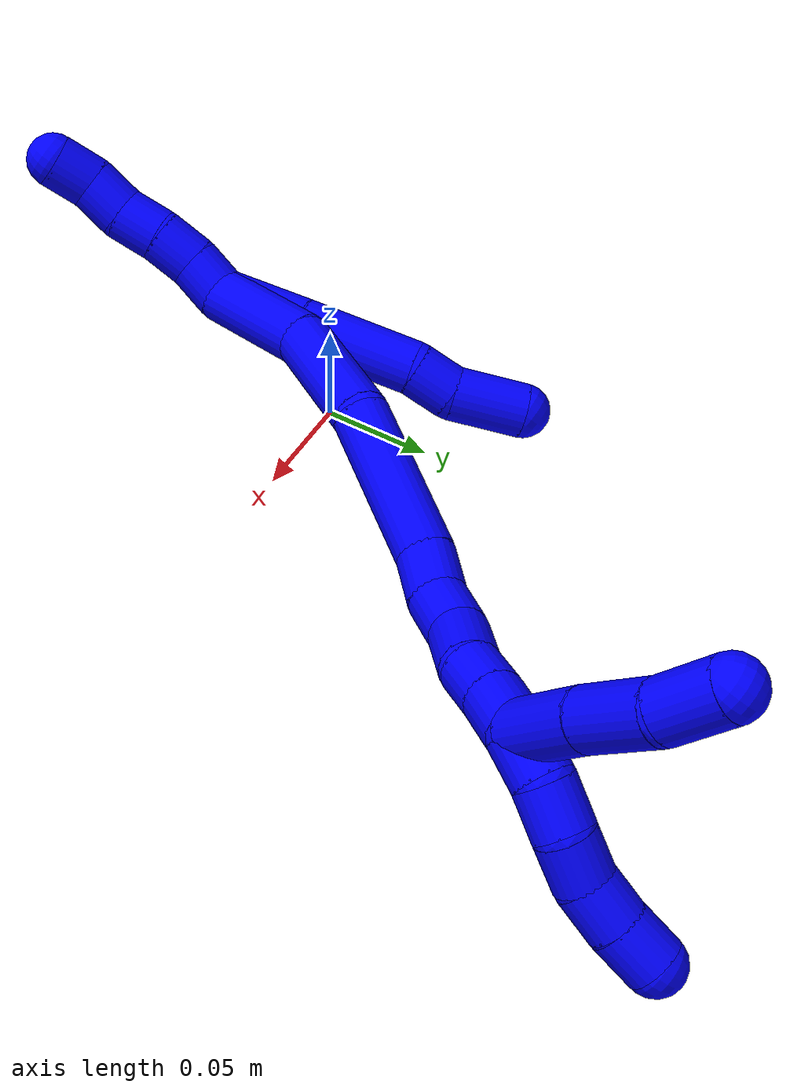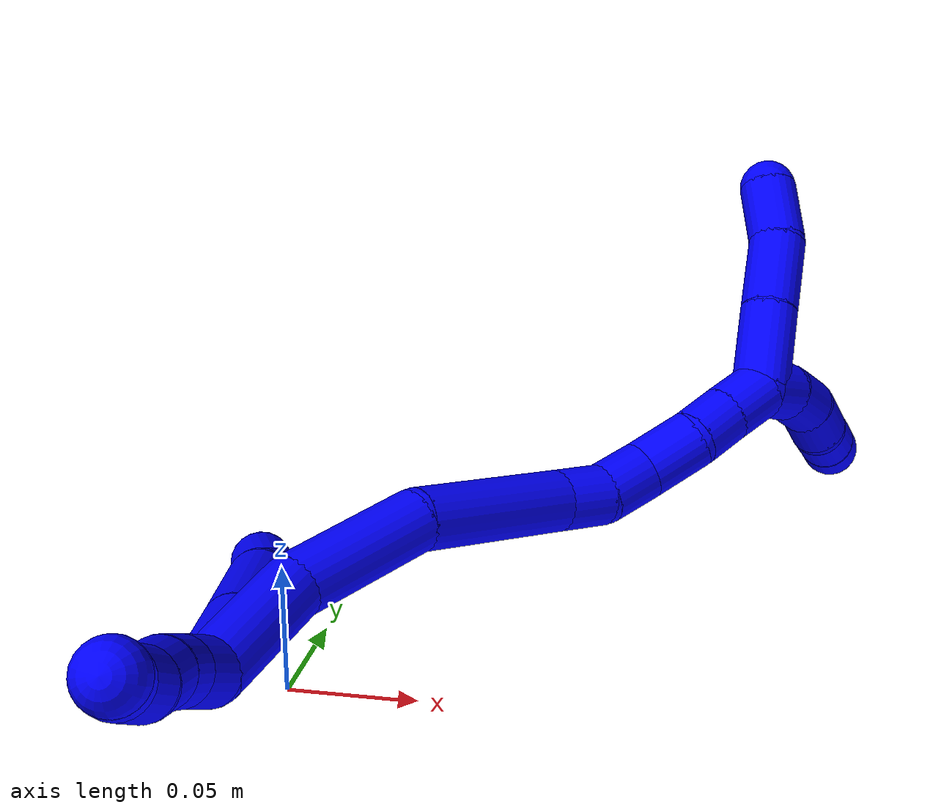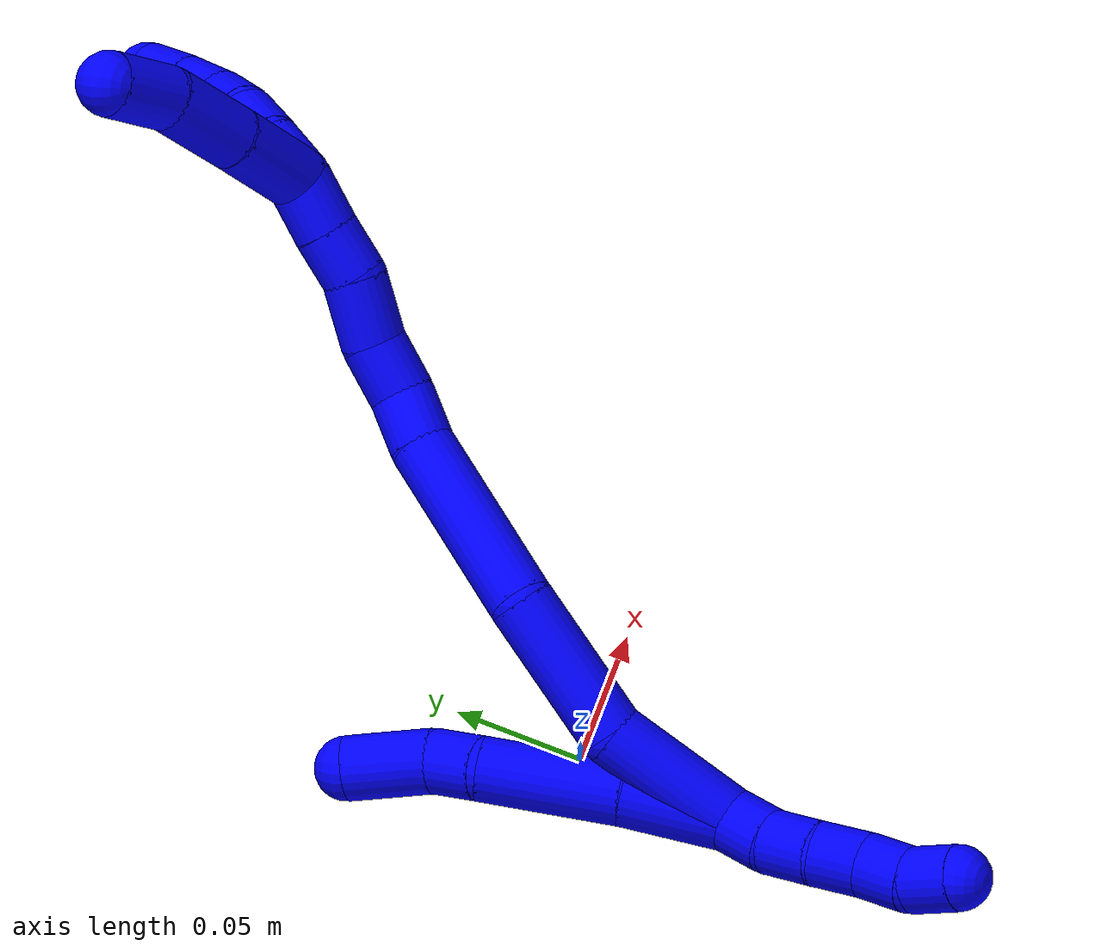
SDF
<sdf version="1.7">
 <world name="default">
  <model name="1">
   <static>0</static>
   <link name="1">
    <collision name="collision-cylinder-e_1_2_8">
     <pose>0.007049 0.00426 -0.018745 -2.91811 0.351485 -2.01451</pose>
     <geometry><cylinder><radius>0.0125</radius><length>0.04095</length></cylinder></geometry>
     <surface>
      <friction><ode><mu>1.16</mu><mu2>1.16</mu2><slip1>0</slip1><slip2>0</slip2></ode></friction>
      <contact><ode><kp>1e+06</kp><kd>1</kd><max_vel>0</max_vel><min_depth>0.001</min_depth></ode></contact>
     </surface>
    </collision>
    <visual name="visual-cylinder-e_1_2_8">
     <pose>0.007049 0.00426 -0.018745 -2.91811 0.351485 -2.01451</pose>
     <geometry><cylinder><radius>0.0125</radius><length>0.04095</length></cylinder></geometry>
     <material><ambient>0 0 1 1</ambient></material>
    </visual>
    <collision name="collision-cylinder-e_2_8_9">
     <pose>0.021313 0.014524 -0.063314 -2.91319 0.265669 -1.72291</pose>
     <geometry><cylinder><radius>0.0125</radius><length>0.054952</length></cylinder></geometry>
     <surface>
      <friction><ode><mu>1.16</mu><mu2>1.16</mu2><slip1>0</slip1><slip2>0</slip2></ode></friction>
      <contact><ode><kp>1e+06</kp><kd>1</kd><max_vel>0</max_vel><min_depth>0.001</min_depth></ode></contact>
     </surface>
    </collision>
    <visual name="visual-cylinder-e_2_8_9">
     <pose>0.021313 0.014524 -0.063314 -2.91319 0.265669 -1.72291</pose>
     <geometry><cylinder><radius>0.0125</radius><length>0.054952</length></cylinder></geometry>
     <material><ambient>0 0 1 1</ambient></material>
    </visual>
    <collision name="collision-cylinder-e_3_9_10">
     <pose>0.028909 0.021017 -0.099191 -3.09285 0.037995 -1.32409</pose>
     <geometry><cylinder><radius>0.0125</radius><length>0.020146</length></cylinder></geometry>
     <surface>
      <friction><ode><mu>1.16</mu><mu2>1.16</mu2><slip1>0</slip1><slip2>0</slip2></ode></friction>
      <contact><ode><kp>1e+06</kp><kd>1</kd><max_vel>0</max_vel><min_depth>0.001</min_depth></ode></contact>
     </surface>
    </collision>
    <visual name="visual-cylinder-e_3_9_10">
     <pose>0.028909 0.021017 -0.099191 -3.09285 0.037995 -1.32409</pose>
     <geometry><cylinder><radius>0.0125</radius><length>0.020146</length></cylinder></geometry>
     <material><ambient>0 0 1 1</ambient></material>
    </visual>
    <collision name="collision-cylinder-e_4_10_6">
     <pose>0.030337 0.027934 -0.124923 -2.75255 0.061588 -0.310198</pose>
     <geometry><cylinder><radius>0.0125</radius><length>0.033952</length></cylinder></geometry>
     <surface>
      <friction><ode><mu>1.16</mu><mu2>1.16</mu2><slip1>0</slip1><slip2>0</slip2></ode></friction>
      <contact><ode><kp>1e+06</kp><kd>1</kd><max_vel>0</max_vel><min_depth>0.001</min_depth></ode></contact>
     </surface>
    </collision>
    <visual name="visual-cylinder-e_4_10_6">
     <pose>0.030337 0.027934 -0.124923 -2.75255 0.061588 -0.310198</pose>
     <geometry><cylinder><radius>0.0125</radius><length>0.033952</length></cylinder></geometry>
     <material><ambient>0 0 1 1</ambient></material>
    </visual>
    <collision name="collision-cylinder-e_1_2_11">
     <pose>-0.001403 0.002413 0.009602 -0.246199 -0.140797 0.017449</pose>
     <geometry><cylinder><radius>0.0125</radius><length>0.02</length></cylinder></geometry>
     <surface>
      <friction><ode><mu>1.16</mu><mu2>1.16</mu2><slip1>0</slip1><slip2>0</slip2></ode></friction>
      <contact><ode><kp>1e+06</kp><kd>1</kd><max_vel>0</max_vel><min_depth>0.001</min_depth></ode></contact>
     </surface>
    </collision>
    <visual name="visual-cylinder-e_1_2_11">
     <pose>-0.001403 0.002413 0.009602 -0.246199 -0.140797 0.017449</pose>
     <geometry><cylinder><radius>0.0125</radius><length>0.02</length></cylinder></geometry>
     <material><ambient>0 0 1 1</ambient></material>
    </visual>
    <collision name="collision-cylinder-e_2_11_12">
     <pose>-0.003333 0.005203 0.029184 -0.037746 -0.052633 0.000994</pose>
     <geometry><cylinder><radius>0.0125</radius><length>0.02</length></cylinder></geometry>
     <surface>
      <friction><ode><mu>1.16</mu><mu2>1.16</mu2><slip1>0</slip1><slip2>0</slip2></ode></friction>
      <contact><ode><kp>1e+06</kp><kd>1</kd><max_vel>0</max_vel><min_depth>0.001</min_depth></ode></contact>
     </surface>
    </collision>
    <visual name="visual-cylinder-e_2_11_12">
     <pose>-0.003333 0.005203 0.029184 -0.037746 -0.052633 0.000994</pose>
     <geometry><cylinder><radius>0.0125</radius><length>0.02</length></cylinder></geometry>
     <material><ambient>0 0 1 1</ambient></material>
    </visual>
    <collision name="collision-cylinder-e_3_12_13">
     <pose>-0.005473 0.004907 0.049009 0.068231 -0.162141 -0.005546</pose>
     <geometry><cylinder><radius>0.0125</radius><length>0.02</length></cylinder></geometry>
     <surface>
      <friction><ode><mu>1.16</mu><mu2>1.16</mu2><slip1>0</slip1><slip2>0</slip2></ode></friction>
      <contact><ode><kp>1e+06</kp><kd>1</kd><max_vel>0</max_vel><min_depth>0.001</min_depth></ode></contact>
     </surface>
    </collision>
    <visual name="visual-cylinder-e_3_12_13">
     <pose>-0.005473 0.004907 0.049009 0.068231 -0.162141 -0.005546</pose>
     <geometry><cylinder><radius>0.0125</radius><length>0.02</length></cylinder></geometry>
     <material><ambient>0 0 1 1</ambient></material>
    </visual>
    <collision name="collision-cylinder-e_4_13_14">
     <pose>-0.007339 0.005626 0.068754 -0.139635 -0.025161 0.00176</pose>
     <geometry><cylinder><radius>0.0125</radius><length>0.02</length></cylinder></geometry>
     <surface>
      <friction><ode><mu>1.16</mu><mu2>1.16</mu2><slip1>0</slip1><slip2>0</slip2></ode></friction>
      <contact><ode><kp>1e+06</kp><kd>1</kd><max_vel>0</max_vel><min_depth>0.001</min_depth></ode></contact>
     </surface>
    </collision>
    <visual name="visual-cylinder-e_4_13_14">
     <pose>-0.007339 0.005626 0.068754 -0.139635 -0.025161 0.00176</pose>
     <geometry><cylinder><radius>0.0125</radius><length>0.02</length></cylinder></geometry>
     <material><ambient>0 0 1 1</ambient></material>
    </visual>
    <collision name="collision-cylinder-e_5_14_5">
     <pose>-0.005932 0.005738 0.088432 0.13005 0.166596 0.010873</pose>
     <geometry><cylinder><radius>0.0125</radius><length>0.02</length></cylinder></geometry>
     <surface>
      <friction><ode><mu>1.16</mu><mu2>1.16</mu2><slip1>0</slip1><slip2>0</slip2></ode></friction>
      <contact><ode><kp>1e+06</kp><kd>1</kd><max_vel>0</max_vel><min_depth>0.001</min_depth></ode></contact>
     </surface>
    </collision>
    <visual name="visual-cylinder-e_5_14_5">
     <pose>-0.005932 0.005738 0.088432 0.13005 0.166596 0.010873</pose>
     <geometry><cylinder><radius>0.0125</radius><length>0.02</length></cylinder></geometry>
     <material><ambient>0 0 1 1</ambient></material>
    </visual>
    <collision name="collision-cylinder-e_1_2_15">
     <pose>0.018278 -0.000413 -0.020298 3.12123 0.732992 3.08854</pose>
     <geometry><cylinder><radius>0.0125</radius><length>0.054636</length></cylinder></geometry>
     <surface>
      <friction><ode><mu>1.16</mu><mu2>1.16</mu2><slip1>0</slip1><slip2>0</slip2></ode></friction>
      <contact><ode><kp>1e+06</kp><kd>1</kd><max_vel>0</max_vel><min_depth>0.001</min_depth></ode></contact>
     </surface>
    </collision>
    <visual name="visual-cylinder-e_1_2_15">
     <pose>0.018278 -0.000413 -0.020298 3.12123 0.732992 3.08854</pose>
     <geometry><cylinder><radius>0.0125</radius><length>0.054636</length></cylinder></geometry>
     <material><ambient>0 0 1 1</ambient></material>
    </visual>
    <collision name="collision-cylinder-e_2_15_16">
     <pose>0.058353 -0.010487 -0.058647 2.65021 0.816676 2.09107</pose>
     <geometry><cylinder><radius>0.0125</radius><length>0.059808</length></cylinder></geometry>
     <surface>
      <friction><ode><mu>1.16</mu><mu2>1.16</mu2><slip1>0</slip1><slip2>0</slip2></ode></friction>
      <contact><ode><kp>1e+06</kp><kd>1</kd><max_vel>0</max_vel><min_depth>0.001</min_depth></ode></contact>
     </surface>
    </collision>
    <visual name="visual-cylinder-e_2_15_16">
     <pose>0.058353 -0.010487 -0.058647 2.65021 0.816676 2.09107</pose>
     <geometry><cylinder><radius>0.0125</radius><length>0.059808</length></cylinder></geometry>
     <material><ambient>0 0 1 1</ambient></material>
    </visual>
    <collision name="collision-cylinder-e_3_16_17">
     <pose>0.098383 -0.038368 -0.102143 2.52016 0.527556 1.39853</pose>
     <geometry><cylinder><radius>0.0125</radius><length>0.072441</length></cylinder></geometry>
     <surface>
      <friction><ode><mu>1.16</mu><mu2>1.16</mu2><slip1>0</slip1><slip2>0</slip2></ode></friction>
      <contact><ode><kp>1e+06</kp><kd>1</kd><max_vel>0</max_vel><min_depth>0.001</min_depth></ode></contact>
     </surface>
    </collision>
    <visual name="visual-cylinder-e_3_16_17">
     <pose>0.098383 -0.038368 -0.102143 2.52016 0.527556 1.39853</pose>
     <geometry><cylinder><radius>0.0125</radius><length>0.072441</length></cylinder></geometry>
     <material><ambient>0 0 1 1</ambient></material>
    </visual>
    <collision name="collision-cylinder-e_4_17_18">
     <pose>0.12282 -0.063143 -0.133677 2.31943 0.606229 1.24469</pose>
     <geometry><cylinder><radius>0.0125</radius><length>0.021772</length></cylinder></geometry>
     <surface>
      <friction><ode><mu>1.16</mu><mu2>1.16</mu2><slip1>0</slip1><slip2>0</slip2></ode></friction>
      <contact><ode><kp>1e+06</kp><kd>1</kd><max_vel>0</max_vel><min_depth>0.001</min_depth></ode></contact>
     </surface>
    </collision>
    <visual name="visual-cylinder-e_4_17_18">
     <pose>0.12282 -0.063143 -0.133677 2.31943 0.606229 1.24469</pose>
     <geometry><cylinder><radius>0.0125</radius><length>0.021772</length></cylinder></geometry>
     <material><ambient>0 0 1 1</ambient></material>
    </visual>
    <collision name="collision-cylinder-e_5_18_19">
     <pose>0.137931 -0.073734 -0.145383 2.51835 0.910604 1.97777</pose>
     <geometry><cylinder><radius>0.0125</radius><length>0.022555</length></cylinder></geometry>
     <surface>
      <friction><ode><mu>1.16</mu><mu2>1.16</mu2><slip1>0</slip1><slip2>0</slip2></ode></friction>
      <contact><ode><kp>1e+06</kp><kd>1</kd><max_vel>0</max_vel><min_depth>0.001</min_depth></ode></contact>
     </surface>
    </collision>
    <visual name="visual-cylinder-e_5_18_19">
     <pose>0.137931 -0.073734 -0.145383 2.51835 0.910604 1.97777</pose>
     <geometry><cylinder><radius>0.0125</radius><length>0.022555</length></cylinder></geometry>
     <material><ambient>0 0 1 1</ambient></material>
    </visual>
    <collision name="collision-cylinder-e_6_19_20">
     <pose>0.158465 -0.083069 -0.154264 2.12307 1.0793 1.64087</pose>
     <geometry><cylinder><radius>0.0125</radius><length>0.026374</length></cylinder></geometry>
     <surface>
      <friction><ode><mu>1.16</mu><mu2>1.16</mu2><slip1>0</slip1><slip2>0</slip2></ode></friction>
      <contact><ode><kp>1e+06</kp><kd>1</kd><max_vel>0</max_vel><min_depth>0.001</min_depth></ode></contact>
     </surface>
    </collision>
    <visual name="visual-cylinder-e_6_19_20">
     <pose>0.158465 -0.083069 -0.154264 2.12307 1.0793 1.64087</pose>
     <geometry><cylinder><radius>0.0125</radius><length>0.026374</length></cylinder></geometry>
     <material><ambient>0 0 1 1</ambient></material>
    </visual>
    <collision name="collision-cylinder-e_7_20_21">
     <pose>0.178578 -0.091099 -0.162483 2.63769 0.982833 2.24498</pose>
     <geometry><cylinder><radius>0.0125</radius><length>0.020399</length></cylinder></geometry>
     <surface>
      <friction><ode><mu>1.16</mu><mu2>1.16</mu2><slip1>0</slip1><slip2>0</slip2></ode></friction>
      <contact><ode><kp>1e+06</kp><kd>1</kd><max_vel>0</max_vel><min_depth>0.001</min_depth></ode></contact>
     </surface>
    </collision>
    <visual name="visual-cylinder-e_7_20_21">
     <pose>0.178578 -0.091099 -0.162483 2.63769 0.982833 2.24498</pose>
     <geometry><cylinder><radius>0.0125</radius><length>0.020399</length></cylinder></geometry>
     <material><ambient>0 0 1 1</ambient></material>
    </visual>
    <collision name="collision-cylinder-e_8_21_1">
     <pose>0.196404 -0.09718 -0.172202 2.52898 1.01317 2.10552</pose>
     <geometry><cylinder><radius>0.0125</radius><length>0.022014</length></cylinder></geometry>
     <surface>
      <friction><ode><mu>1.16</mu><mu2>1.16</mu2><slip1>0</slip1><slip2>0</slip2></ode></friction>
      <contact><ode><kp>1e+06</kp><kd>1</kd><max_vel>0</max_vel><min_depth>0.001</min_depth></ode></contact>
     </surface>
    </collision>
    <visual name="visual-cylinder-e_8_21_1">
     <pose>0.196404 -0.09718 -0.172202 2.52898 1.01317 2.10552</pose>
     <geometry><cylinder><radius>0.0125</radius><length>0.022014</length></cylinder></geometry>
     <material><ambient>0 0 1 1</ambient></material>
    </visual>
    <collision name="collision-cylinder-e_1_1_22">
     <pose>0.209305 -0.105167 -0.18508 2.62228 0.36413 1.21205</pose>
     <geometry><cylinder><radius>0.0125</radius><length>0.02</length></cylinder></geometry>
     <surface>
      <friction><ode><mu>1.16</mu><mu2>1.16</mu2><slip1>0</slip1><slip2>0</slip2></ode></friction>
      <contact><ode><kp>1e+06</kp><kd>1</kd><max_vel>0</max_vel><min_depth>0.001</min_depth></ode></contact>
     </surface>
    </collision>
    <visual name="visual-cylinder-e_1_1_22">
     <pose>0.209305 -0.105167 -0.18508 2.62228 0.36413 1.21205</pose>
     <geometry><cylinder><radius>0.0125</radius><length>0.02</length></cylinder></geometry>
     <material><ambient>0 0 1 1</ambient></material>
    </visual>
    <collision name="collision-cylinder-e_2_22_23">
     <pose>0.213717 -0.115229 -0.20155 2.56586 0.085172 0.285865</pose>
     <geometry><cylinder><radius>0.0125</radius><length>0.02</length></cylinder></geometry>
     <surface>
      <friction><ode><mu>1.16</mu><mu2>1.16</mu2><slip1>0</slip1><slip2>0</slip2></ode></friction>
      <contact><ode><kp>1e+06</kp><kd>1</kd><max_vel>0</max_vel><min_depth>0.001</min_depth></ode></contact>
     </surface>
    </collision>
    <visual name="visual-cylinder-e_2_22_23">
     <pose>0.213717 -0.115229 -0.20155 2.56586 0.085172 0.285865</pose>
     <geometry><cylinder><radius>0.0125</radius><length>0.02</length></cylinder></geometry>
     <material><ambient>0 0 1 1</ambient></material>
    </visual>
    <collision name="collision-cylinder-e_3_23_24">
     <pose>0.212884 -0.125444 -0.218523 2.63412 -0.169195 -0.632079</pose>
     <geometry><cylinder><radius>0.0125</radius><length>0.02</length></cylinder></geometry>
     <surface>
      <friction><ode><mu>1.16</mu><mu2>1.16</mu2><slip1>0</slip1><slip2>0</slip2></ode></friction>
      <contact><ode><kp>1e+06</kp><kd>1</kd><max_vel>0</max_vel><min_depth>0.001</min_depth></ode></contact>
     </surface>
    </collision>
    <visual name="visual-cylinder-e_3_23_24">
     <pose>0.212884 -0.125444 -0.218523 2.63412 -0.169195 -0.632079</pose>
     <geometry><cylinder><radius>0.0125</radius><length>0.02</length></cylinder></geometry>
     <material><ambient>0 0 1 1</ambient></material>
    </visual>
    <collision name="collision-cylinder-e_4_24_25">
     <pose>0.21114 -0.133112 -0.236714 2.84972 -0.006024 -0.040978</pose>
     <geometry><cylinder><radius>0.0125</radius><length>0.02</length></cylinder></geometry>
     <surface>
      <friction><ode><mu>1.16</mu><mu2>1.16</mu2><slip1>0</slip1><slip2>0</slip2></ode></friction>
      <contact><ode><kp>1e+06</kp><kd>1</kd><max_vel>0</max_vel><min_depth>0.001</min_depth></ode></contact>
     </surface>
    </collision>
    <visual name="visual-cylinder-e_4_24_25">
     <pose>0.21114 -0.133112 -0.236714 2.84972 -0.006024 -0.040978</pose>
     <geometry><cylinder><radius>0.0125</radius><length>0.02</length></cylinder></geometry>
     <material><ambient>0 0 1 1</ambient></material>
    </visual>
    <collision name="collision-cylinder-e_5_25_4">
     <pose>0.211433 -0.137832 -0.256114 2.95607 0.035302 0.375067</pose>
     <geometry><cylinder><radius>0.0125</radius><length>0.02</length></cylinder></geometry>
     <surface>
      <friction><ode><mu>1.16</mu><mu2>1.16</mu2><slip1>0</slip1><slip2>0</slip2></ode></friction>
      <contact><ode><kp>1e+06</kp><kd>1</kd><max_vel>0</max_vel><min_depth>0.001</min_depth></ode></contact>
     </surface>
    </collision>
    <visual name="visual-cylinder-e_5_25_4">
     <pose>0.211433 -0.137832 -0.256114 2.95607 0.035302 0.375067</pose>
     <geometry><cylinder><radius>0.0125</radius><length>0.02</length></cylinder></geometry>
     <material><ambient>0 0 1 1</ambient></material>
    </visual>
    <collision name="collision-cylinder-e_1_1_26">
     <pose>0.222125 -0.092979 -0.181515 -2.1129 1.07718 -1.62658</pose>
     <geometry><cylinder><radius>0.0125</radius><length>0.037203</length></cylinder></geometry>
     <surface>
      <friction><ode><mu>1.16</mu><mu2>1.16</mu2><slip1>0</slip1><slip2>0</slip2></ode></friction>
      <contact><ode><kp>1e+06</kp><kd>1</kd><max_vel>0</max_vel><min_depth>0.001</min_depth></ode></contact>
     </surface>
    </collision>
    <visual name="visual-cylinder-e_1_1_26">
     <pose>0.222125 -0.092979 -0.181515 -2.1129 1.07718 -1.62658</pose>
     <geometry><cylinder><radius>0.0125</radius><length>0.037203</length></cylinder></geometry>
     <material><ambient>0 0 1 1</ambient></material>
    </visual>
    <collision name="collision-cylinder-e_2_26_27">
     <pose>0.253511 -0.078667 -0.191481 -2.24631 1.0471 -1.75399</pose>
     <geometry><cylinder><radius>0.0125</radius><length>0.034654</length></cylinder></geometry>
     <surface>
      <friction><ode><mu>1.16</mu><mu2>1.16</mu2><slip1>0</slip1><slip2>0</slip2></ode></friction>
      <contact><ode><kp>1e+06</kp><kd>1</kd><max_vel>0</max_vel><min_depth>0.001</min_depth></ode></contact>
     </surface>
    </collision>
    <visual name="visual-cylinder-e_2_26_27">
     <pose>0.253511 -0.078667 -0.191481 -2.24631 1.0471 -1.75399</pose>
     <geometry><cylinder><radius>0.0125</radius><length>0.034654</length></cylinder></geometry>
     <material><ambient>0 0 1 1</ambient></material>
    </visual>
    <collision name="collision-cylinder-e_3_27_3">
     <pose>0.278902 -0.063393 -0.201104 -2.0297 0.830255 -1.23397</pose>
     <geometry><cylinder><radius>0.0125</radius><length>0.028142</length></cylinder></geometry>
     <surface>
      <friction><ode><mu>1.16</mu><mu2>1.16</mu2><slip1>0</slip1><slip2>0</slip2></ode></friction>
      <contact><ode><kp>1e+06</kp><kd>1</kd><max_vel>0</max_vel><min_depth>0.001</min_depth></ode></contact>
     </surface>
    </collision>
    <visual name="visual-cylinder-e_3_27_3">
     <pose>0.278902 -0.063393 -0.201104 -2.0297 0.830255 -1.23397</pose>
     <geometry><cylinder><radius>0.0125</radius><length>0.028142</length></cylinder></geometry>
     <material><ambient>0 0 1 1</ambient></material>
    </visual>
    <collision name="collision-sphere-3">
     <pose>0.289288 -0.054882 -0.20531 0 -0 0</pose>
     <geometry><sphere><radius>0.0125</radius></sphere></geometry>
     <surface>
      <friction><ode><mu>1.16</mu><mu2>1.16</mu2><slip1>0</slip1><slip2>0</slip2></ode></friction>
      <contact><ode><kp>1e+06</kp><kd>1</kd><max_vel>0</max_vel><min_depth>0.001</min_depth></ode></contact>
     </surface>
    </collision>
    <visual name="visual-sphere-3">
     <pose>0.289288 -0.054882 -0.20531 0 -0 0</pose>
     <geometry><sphere><radius>0.0125</radius></sphere></geometry>
     <material><ambient>0 0 1 1</ambient></material>
    </visual>
    <collision name="collision-sphere-27">
     <pose>0.268516 -0.071905 -0.196899 0 -0 0</pose>
     <geometry><sphere><radius>0.0125</radius></sphere></geometry>
     <surface>
      <friction><ode><mu>1.16</mu><mu2>1.16</mu2><slip1>0</slip1><slip2>0</slip2></ode></friction>
      <contact><ode><kp>1e+06</kp><kd>1</kd><max_vel>0</max_vel><min_depth>0.001</min_depth></ode></contact>
     </surface>
    </collision>
    <visual name="visual-sphere-27">
     <pose>0.268516 -0.071905 -0.196899 0 -0 0</pose>
     <geometry><sphere><radius>0.0125</radius></sphere></geometry>
     <material><ambient>0 0 1 1</ambient></material>
    </visual>
    <collision name="collision-sphere-26">
     <pose>0.238506 -0.085429 -0.186062 0 -0 0</pose>
     <geometry><sphere><radius>0.0125</radius></sphere></geometry>
     <surface>
      <friction><ode><mu>1.16</mu><mu2>1.16</mu2><slip1>0</slip1><slip2>0</slip2></ode></friction>
      <contact><ode><kp>1e+06</kp><kd>1</kd><max_vel>0</max_vel><min_depth>0.001</min_depth></ode></contact>
     </surface>
    </collision>
    <visual name="visual-sphere-26">
     <pose>0.238506 -0.085429 -0.186062 0 -0 0</pose>
     <geometry><sphere><radius>0.0125</radius></sphere></geometry>
     <material><ambient>0 0 1 1</ambient></material>
    </visual>
    <collision name="collision-sphere-4">
     <pose>0.211786 -0.139676 -0.265936 0 -0 0</pose>
     <geometry><sphere><radius>0.0125</radius></sphere></geometry>
     <surface>
      <friction><ode><mu>1.16</mu><mu2>1.16</mu2><slip1>0</slip1><slip2>0</slip2></ode></friction>
      <contact><ode><kp>1e+06</kp><kd>1</kd><max_vel>0</max_vel><min_depth>0.001</min_depth></ode></contact>
     </surface>
    </collision>
    <visual name="visual-sphere-4">
     <pose>0.211786 -0.139676 -0.265936 0 -0 0</pose>
     <geometry><sphere><radius>0.0125</radius></sphere></geometry>
     <material><ambient>0 0 1 1</ambient></material>
    </visual>
    <collision name="collision-sphere-25">
     <pose>0.21108 -0.135989 -0.246291 0 -0 0</pose>
     <geometry><sphere><radius>0.0125</radius></sphere></geometry>
     <surface>
      <friction><ode><mu>1.16</mu><mu2>1.16</mu2><slip1>0</slip1><slip2>0</slip2></ode></friction>
      <contact><ode><kp>1e+06</kp><kd>1</kd><max_vel>0</max_vel><min_depth>0.001</min_depth></ode></contact>
     </surface>
    </collision>
    <visual name="visual-sphere-25">
     <pose>0.21108 -0.135989 -0.246291 0 -0 0</pose>
     <geometry><sphere><radius>0.0125</radius></sphere></geometry>
     <material><ambient>0 0 1 1</ambient></material>
    </visual>
    <collision name="collision-sphere-24">
     <pose>0.2112 -0.130234 -0.227138 0 -0 0</pose>
     <geometry><sphere><radius>0.0125</radius></sphere></geometry>
     <surface>
      <friction><ode><mu>1.16</mu><mu2>1.16</mu2><slip1>0</slip1><slip2>0</slip2></ode></friction>
      <contact><ode><kp>1e+06</kp><kd>1</kd><max_vel>0</max_vel><min_depth>0.001</min_depth></ode></contact>
     </surface>
    </collision>
    <visual name="visual-sphere-24">
     <pose>0.2112 -0.130234 -0.227138 0 -0 0</pose>
     <geometry><sphere><radius>0.0125</radius></sphere></geometry>
     <material><ambient>0 0 1 1</ambient></material>
    </visual>
    <collision name="collision-sphere-23">
     <pose>0.214568 -0.120654 -0.209908 0 -0 0</pose>
     <geometry><sphere><radius>0.0125</radius></sphere></geometry>
     <surface>
      <friction><ode><mu>1.16</mu><mu2>1.16</mu2><slip1>0</slip1><slip2>0</slip2></ode></friction>
      <contact><ode><kp>1e+06</kp><kd>1</kd><max_vel>0</max_vel><min_depth>0.001</min_depth></ode></contact>
     </surface>
    </collision>
    <visual name="visual-sphere-23">
     <pose>0.214568 -0.120654 -0.209908 0 -0 0</pose>
     <geometry><sphere><radius>0.0125</radius></sphere></geometry>
     <material><ambient>0 0 1 1</ambient></material>
    </visual>
    <collision name="collision-sphere-22">
     <pose>0.212867 -0.109804 -0.193193 0 -0 0</pose>
     <geometry><sphere><radius>0.0125</radius></sphere></geometry>
     <surface>
      <friction><ode><mu>1.16</mu><mu2>1.16</mu2><slip1>0</slip1><slip2>0</slip2></ode></friction>
      <contact><ode><kp>1e+06</kp><kd>1</kd><max_vel>0</max_vel><min_depth>0.001</min_depth></ode></contact>
     </surface>
    </collision>
    <visual name="visual-sphere-22">
     <pose>0.212867 -0.109804 -0.193193 0 -0 0</pose>
     <geometry><sphere><radius>0.0125</radius></sphere></geometry>
     <material><ambient>0 0 1 1</ambient></material>
    </visual>
    <collision name="collision-sphere-1">
     <pose>0.205744 -0.100529 -0.176968 0 -0 0</pose>
     <geometry><sphere><radius>0.0125</radius></sphere></geometry>
     <surface>
      <friction><ode><mu>1.16</mu><mu2>1.16</mu2><slip1>0</slip1><slip2>0</slip2></ode></friction>
      <contact><ode><kp>1e+06</kp><kd>1</kd><max_vel>0</max_vel><min_depth>0.001</min_depth></ode></contact>
     </surface>
    </collision>
    <visual name="visual-sphere-1">
     <pose>0.205744 -0.100529 -0.176968 0 -0 0</pose>
     <geometry><sphere><radius>0.0125</radius></sphere></geometry>
     <material><ambient>0 0 1 1</ambient></material>
    </visual>
    <collision name="collision-sphere-21">
     <pose>0.187065 -0.093831 -0.167437 0 -0 0</pose>
     <geometry><sphere><radius>0.0125</radius></sphere></geometry>
     <surface>
      <friction><ode><mu>1.16</mu><mu2>1.16</mu2><slip1>0</slip1><slip2>0</slip2></ode></friction>
      <contact><ode><kp>1e+06</kp><kd>1</kd><max_vel>0</max_vel><min_depth>0.001</min_depth></ode></contact>
     </surface>
    </collision>
    <visual name="visual-sphere-21">
     <pose>0.187065 -0.093831 -0.167437 0 -0 0</pose>
     <geometry><sphere><radius>0.0125</radius></sphere></geometry>
     <material><ambient>0 0 1 1</ambient></material>
    </visual>
    <collision name="collision-sphere-11">
     <pose>-0.002807 0.004826 0.019205 0 -0 0</pose>
     <geometry><sphere><radius>0.0125</radius></sphere></geometry>
     <surface>
      <friction><ode><mu>1.16</mu><mu2>1.16</mu2><slip1>0</slip1><slip2>0</slip2></ode></friction>
      <contact><ode><kp>1e+06</kp><kd>1</kd><max_vel>0</max_vel><min_depth>0.001</min_depth></ode></contact>
     </surface>
    </collision>
    <visual name="visual-sphere-11">
     <pose>-0.002807 0.004826 0.019205 0 -0 0</pose>
     <geometry><sphere><radius>0.0125</radius></sphere></geometry>
     <material><ambient>0 0 1 1</ambient></material>
    </visual>
    <collision name="collision-sphere-6">
     <pose>0.031382 0.034361 -0.1406 0 -0 0</pose>
     <geometry><sphere><radius>0.0125</radius></sphere></geometry>
     <surface>
      <friction><ode><mu>1.16</mu><mu2>1.16</mu2><slip1>0</slip1><slip2>0</slip2></ode></friction>
      <contact><ode><kp>1e+06</kp><kd>1</kd><max_vel>0</max_vel><min_depth>0.001</min_depth></ode></contact>
     </surface>
    </collision>
    <visual name="visual-sphere-6">
     <pose>0.031382 0.034361 -0.1406 0 -0 0</pose>
     <geometry><sphere><radius>0.0125</radius></sphere></geometry>
     <material><ambient>0 0 1 1</ambient></material>
    </visual>
    <collision name="collision-sphere-10">
     <pose>0.029292 0.021507 -0.109245 0 -0 0</pose>
     <geometry><sphere><radius>0.0125</radius></sphere></geometry>
     <surface>
      <friction><ode><mu>1.16</mu><mu2>1.16</mu2><slip1>0</slip1><slip2>0</slip2></ode></friction>
      <contact><ode><kp>1e+06</kp><kd>1</kd><max_vel>0</max_vel><min_depth>0.001</min_depth></ode></contact>
     </surface>
    </collision>
    <visual name="visual-sphere-10">
     <pose>0.029292 0.021507 -0.109245 0 -0 0</pose>
     <geometry><sphere><radius>0.0125</radius></sphere></geometry>
     <material><ambient>0 0 1 1</ambient></material>
    </visual>
    <collision name="collision-sphere-9">
     <pose>0.028527 0.020526 -0.089137 0 -0 0</pose>
     <geometry><sphere><radius>0.0125</radius></sphere></geometry>
     <surface>
      <friction><ode><mu>1.16</mu><mu2>1.16</mu2><slip1>0</slip1><slip2>0</slip2></ode></friction>
      <contact><ode><kp>1e+06</kp><kd>1</kd><max_vel>0</max_vel><min_depth>0.001</min_depth></ode></contact>
     </surface>
    </collision>
    <visual name="visual-sphere-9">
     <pose>0.028527 0.020526 -0.089137 0 -0 0</pose>
     <geometry><sphere><radius>0.0125</radius></sphere></geometry>
     <material><ambient>0 0 1 1</ambient></material>
    </visual>
    <collision name="collision-sphere-2">
     <geometry><sphere><radius>0.0125</radius></sphere></geometry>
     <surface>
      <friction><ode><mu>1.16</mu><mu2>1.16</mu2><slip1>0</slip1><slip2>0</slip2></ode></friction>
      <contact><ode><kp>1e+06</kp><kd>1</kd><max_vel>0</max_vel><min_depth>0.001</min_depth></ode></contact>
     </surface>
    </collision>
    <visual name="visual-sphere-2">
     <geometry><sphere><radius>0.0125</radius></sphere></geometry>
     <material><ambient>0 0 1 1</ambient></material>
    </visual>
    <collision name="collision-sphere-19">
     <pose>0.146839 -0.077771 -0.150998 0 -0 0</pose>
     <geometry><sphere><radius>0.0125</radius></sphere></geometry>
     <surface>
      <friction><ode><mu>1.16</mu><mu2>1.16</mu2><slip1>0</slip1><slip2>0</slip2></ode></friction>
      <contact><ode><kp>1e+06</kp><kd>1</kd><max_vel>0</max_vel><min_depth>0.001</min_depth></ode></contact>
     </surface>
    </collision>
    <visual name="visual-sphere-19">
     <pose>0.146839 -0.077771 -0.150998 0 -0 0</pose>
     <geometry><sphere><radius>0.0125</radius></sphere></geometry>
     <material><ambient>0 0 1 1</ambient></material>
    </visual>
    <collision name="collision-sphere-8">
     <pose>0.014099 0.008521 -0.03749 0 -0 0</pose>
     <geometry><sphere><radius>0.0125</radius></sphere></geometry>
     <surface>
      <friction><ode><mu>1.16</mu><mu2>1.16</mu2><slip1>0</slip1><slip2>0</slip2></ode></friction>
      <contact><ode><kp>1e+06</kp><kd>1</kd><max_vel>0</max_vel><min_depth>0.001</min_depth></ode></contact>
     </surface>
    </collision>
    <visual name="visual-sphere-8">
     <pose>0.014099 0.008521 -0.03749 0 -0 0</pose>
     <geometry><sphere><radius>0.0125</radius></sphere></geometry>
     <material><ambient>0 0 1 1</ambient></material>
    </visual>
    <collision name="collision-sphere-12">
     <pose>-0.003859 0.00558 0.039163 0 -0 0</pose>
     <geometry><sphere><radius>0.0125</radius></sphere></geometry>
     <surface>
      <friction><ode><mu>1.16</mu><mu2>1.16</mu2><slip1>0</slip1><slip2>0</slip2></ode></friction>
      <contact><ode><kp>1e+06</kp><kd>1</kd><max_vel>0</max_vel><min_depth>0.001</min_depth></ode></contact>
     </surface>
    </collision>
    <visual name="visual-sphere-12">
     <pose>-0.003859 0.00558 0.039163 0 -0 0</pose>
     <geometry><sphere><radius>0.0125</radius></sphere></geometry>
     <material><ambient>0 0 1 1</ambient></material>
    </visual>
    <collision name="collision-sphere-13">
     <pose>-0.007087 0.004234 0.058855 0 -0 0</pose>
     <geometry><sphere><radius>0.0125</radius></sphere></geometry>
     <surface>
      <friction><ode><mu>1.16</mu><mu2>1.16</mu2><slip1>0</slip1><slip2>0</slip2></ode></friction>
      <contact><ode><kp>1e+06</kp><kd>1</kd><max_vel>0</max_vel><min_depth>0.001</min_depth></ode></contact>
     </surface>
    </collision>
    <visual name="visual-sphere-13">
     <pose>-0.007087 0.004234 0.058855 0 -0 0</pose>
     <geometry><sphere><radius>0.0125</radius></sphere></geometry>
     <material><ambient>0 0 1 1</ambient></material>
    </visual>
    <collision name="collision-sphere-14">
     <pose>-0.007591 0.007017 0.078654 0 -0 0</pose>
     <geometry><sphere><radius>0.0125</radius></sphere></geometry>
     <surface>
      <friction><ode><mu>1.16</mu><mu2>1.16</mu2><slip1>0</slip1><slip2>0</slip2></ode></friction>
      <contact><ode><kp>1e+06</kp><kd>1</kd><max_vel>0</max_vel><min_depth>0.001</min_depth></ode></contact>
     </surface>
    </collision>
    <visual name="visual-sphere-14">
     <pose>-0.007591 0.007017 0.078654 0 -0 0</pose>
     <geometry><sphere><radius>0.0125</radius></sphere></geometry>
     <material><ambient>0 0 1 1</ambient></material>
    </visual>
    <collision name="collision-sphere-5">
     <pose>-0.004274 0.004459 0.09821 0 -0 0</pose>
     <geometry><sphere><radius>0.0125</radius></sphere></geometry>
     <surface>
      <friction><ode><mu>1.16</mu><mu2>1.16</mu2><slip1>0</slip1><slip2>0</slip2></ode></friction>
      <contact><ode><kp>1e+06</kp><kd>1</kd><max_vel>0</max_vel><min_depth>0.001</min_depth></ode></contact>
     </surface>
    </collision>
    <visual name="visual-sphere-5">
     <pose>-0.004274 0.004459 0.09821 0 -0 0</pose>
     <geometry><sphere><radius>0.0125</radius></sphere></geometry>
     <material><ambient>0 0 1 1</ambient></material>
    </visual>
    <collision name="collision-sphere-15">
     <pose>0.036557 -0.000827 -0.040596 0 -0 0</pose>
     <geometry><sphere><radius>0.0125</radius></sphere></geometry>
     <surface>
      <friction><ode><mu>1.16</mu><mu2>1.16</mu2><slip1>0</slip1><slip2>0</slip2></ode></friction>
      <contact><ode><kp>1e+06</kp><kd>1</kd><max_vel>0</max_vel><min_depth>0.001</min_depth></ode></contact>
     </surface>
    </collision>
    <visual name="visual-sphere-15">
     <pose>0.036557 -0.000827 -0.040596 0 -0 0</pose>
     <geometry><sphere><radius>0.0125</radius></sphere></geometry>
     <material><ambient>0 0 1 1</ambient></material>
    </visual>
    <collision name="collision-sphere-16">
     <pose>0.080149 -0.020147 -0.076698 0 -0 0</pose>
     <geometry><sphere><radius>0.0125</radius></sphere></geometry>
     <surface>
      <friction><ode><mu>1.16</mu><mu2>1.16</mu2><slip1>0</slip1><slip2>0</slip2></ode></friction>
      <contact><ode><kp>1e+06</kp><kd>1</kd><max_vel>0</max_vel><min_depth>0.001</min_depth></ode></contact>
     </surface>
    </collision>
    <visual name="visual-sphere-16">
     <pose>0.080149 -0.020147 -0.076698 0 -0 0</pose>
     <geometry><sphere><radius>0.0125</radius></sphere></geometry>
     <material><ambient>0 0 1 1</ambient></material>
    </visual>
    <collision name="collision-sphere-17">
     <pose>0.116617 -0.056589 -0.127588 0 -0 0</pose>
     <geometry><sphere><radius>0.0125</radius></sphere></geometry>
     <surface>
      <friction><ode><mu>1.16</mu><mu2>1.16</mu2><slip1>0</slip1><slip2>0</slip2></ode></friction>
      <contact><ode><kp>1e+06</kp><kd>1</kd><max_vel>0</max_vel><min_depth>0.001</min_depth></ode></contact>
     </surface>
    </collision>
    <visual name="visual-sphere-17">
     <pose>0.116617 -0.056589 -0.127588 0 -0 0</pose>
     <geometry><sphere><radius>0.0125</radius></sphere></geometry>
     <material><ambient>0 0 1 1</ambient></material>
    </visual>
    <collision name="collision-sphere-18">
     <pose>0.129023 -0.069697 -0.139767 0 -0 0</pose>
     <geometry><sphere><radius>0.0125</radius></sphere></geometry>
     <surface>
      <friction><ode><mu>1.16</mu><mu2>1.16</mu2><slip1>0</slip1><slip2>0</slip2></ode></friction>
      <contact><ode><kp>1e+06</kp><kd>1</kd><max_vel>0</max_vel><min_depth>0.001</min_depth></ode></contact>
     </surface>
    </collision>
    <visual name="visual-sphere-18">
     <pose>0.129023 -0.069697 -0.139767 0 -0 0</pose>
     <geometry><sphere><radius>0.0125</radius></sphere></geometry>
     <material><ambient>0 0 1 1</ambient></material>
    </visual>
    <collision name="collision-sphere-20">
     <pose>0.170091 -0.088367 -0.157529 0 -0 0</pose>
     <geometry><sphere><radius>0.0125</radius></sphere></geometry>
     <surface>
      <friction><ode><mu>1.16</mu><mu2>1.16</mu2><slip1>0</slip1><slip2>0</slip2></ode></friction>
      <contact><ode><kp>1e+06</kp><kd>1</kd><max_vel>0</max_vel><min_depth>0.001</min_depth></ode></contact>
     </surface>
    </collision>
    <visual name="visual-sphere-20">
     <pose>0.170091 -0.088367 -0.157529 0 -0 0</pose>
     <geometry><sphere><radius>0.0125</radius></sphere></geometry>
     <material><ambient>0 0 1 1</ambient></material>
    </visual>
    <inertial>
     <pose>0.104289 -0.040185 -0.101299 0 -0 0</pose>
     <mass>0.75</mass>
     <inertia><ixx>4e-05</ixx><ixy>0</ixy><ixz>0</ixz><iyy>6.9e-05</iyy><iyz>0</iyz><izz>-7.7e-05</izz></inertia>
    </inertial>
   </link>
   <pose>-0.005987 -0.06171 0.039503 0.75362 -0.861055 0.795939</pose>
  </model>
 </world>
</sdf>
